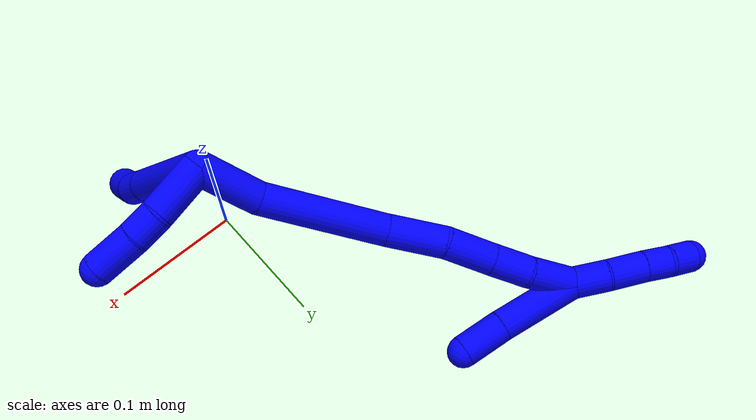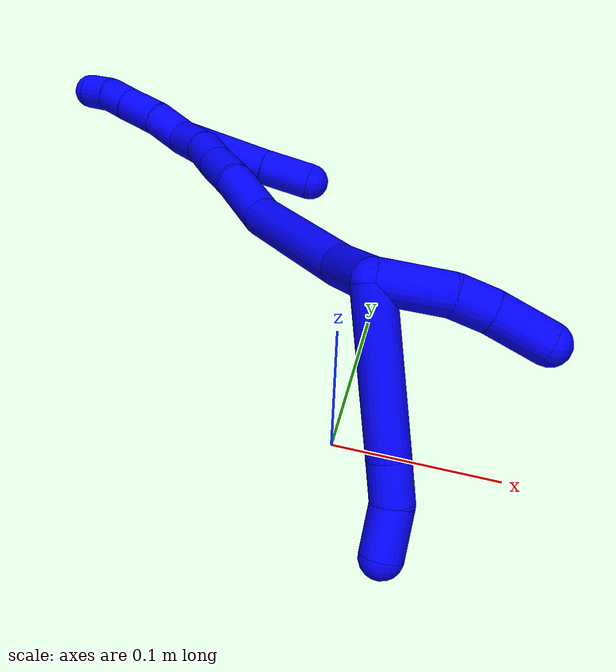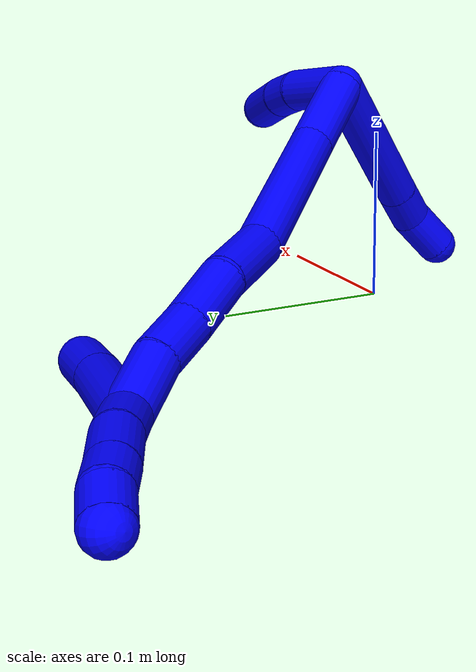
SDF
<sdf version="1.7">
 <world name="default">
  <model name="1">
   <static>0</static>
   <link name="1">
    <collision name="collision-cylinder-e_1_2_8">
     <pose>-0.02412 -0.039411 -0.01281 1.88506 -0.527106 -0.711275</pose>
     <geometry><cylinder><radius>0.0125</radius><length>0.095898</length></cylinder></geometry>
     <surface>
      <friction><ode><mu>1.16</mu><mu2>1.16</mu2><slip1>0</slip1><slip2>0</slip2></ode></friction>
      <contact><ode><kp>1e+06</kp><kd>1</kd><max_vel>0</max_vel><min_depth>0.001</min_depth></ode></contact>
     </surface>
    </collision>
    <visual name="visual-cylinder-e_1_2_8">
     <pose>-0.02412 -0.039411 -0.01281 1.88506 -0.527106 -0.711275</pose>
     <geometry><cylinder><radius>0.0125</radius><length>0.095898</length></cylinder></geometry>
     <material><ambient>0 0 1 1</ambient></material>
    </visual>
    <collision name="collision-cylinder-e_2_8_9">
     <pose>-0.054355 -0.089045 -0.028797 1.87207 -0.518979 -0.691976</pose>
     <geometry><cylinder><radius>0.0125</radius><length>0.024657</length></cylinder></geometry>
     <surface>
      <friction><ode><mu>1.16</mu><mu2>1.16</mu2><slip1>0</slip1><slip2>0</slip2></ode></friction>
      <contact><ode><kp>1e+06</kp><kd>1</kd><max_vel>0</max_vel><min_depth>0.001</min_depth></ode></contact>
     </surface>
    </collision>
    <visual name="visual-cylinder-e_2_8_9">
     <pose>-0.054355 -0.089045 -0.028797 1.87207 -0.518979 -0.691976</pose>
     <geometry><cylinder><radius>0.0125</radius><length>0.024657</length></cylinder></geometry>
     <material><ambient>0 0 1 1</ambient></material>
    </visual>
    <collision name="collision-cylinder-e_3_9_6">
     <pose>-0.067671 -0.112101 -0.031497 1.5337 -0.511083 -0.493223</pose>
     <geometry><cylinder><radius>0.0125</radius><length>0.029445</length></cylinder></geometry>
     <surface>
      <friction><ode><mu>1.16</mu><mu2>1.16</mu2><slip1>0</slip1><slip2>0</slip2></ode></friction>
      <contact><ode><kp>1e+06</kp><kd>1</kd><max_vel>0</max_vel><min_depth>0.001</min_depth></ode></contact>
     </surface>
    </collision>
    <visual name="visual-cylinder-e_3_9_6">
     <pose>-0.067671 -0.112101 -0.031497 1.5337 -0.511083 -0.493223</pose>
     <geometry><cylinder><radius>0.0125</radius><length>0.029445</length></cylinder></geometry>
     <material><ambient>0 0 1 1</ambient></material>
    </visual>
    <collision name="collision-cylinder-e_1_2_10">
     <pose>0.000732 -0.001019 -0.021494 3.0942 0.033988 1.24417</pose>
     <geometry><cylinder><radius>0.0125</radius><length>0.043062</length></cylinder></geometry>
     <surface>
      <friction><ode><mu>1.16</mu><mu2>1.16</mu2><slip1>0</slip1><slip2>0</slip2></ode></friction>
      <contact><ode><kp>1e+06</kp><kd>1</kd><max_vel>0</max_vel><min_depth>0.001</min_depth></ode></contact>
     </surface>
    </collision>
    <visual name="visual-cylinder-e_1_2_10">
     <pose>0.000732 -0.001019 -0.021494 3.0942 0.033988 1.24417</pose>
     <geometry><cylinder><radius>0.0125</radius><length>0.043062</length></cylinder></geometry>
     <material><ambient>0 0 1 1</ambient></material>
    </visual>
    <collision name="collision-cylinder-e_2_10_11">
     <pose>0.000727 -0.004545 -0.05379 2.91362 -0.066273 -0.563682</pose>
     <geometry><cylinder><radius>0.0125</radius><length>0.022225</length></cylinder></geometry>
     <surface>
      <friction><ode><mu>1.16</mu><mu2>1.16</mu2><slip1>0</slip1><slip2>0</slip2></ode></friction>
      <contact><ode><kp>1e+06</kp><kd>1</kd><max_vel>0</max_vel><min_depth>0.001</min_depth></ode></contact>
     </surface>
    </collision>
    <visual name="visual-cylinder-e_2_10_11">
     <pose>0.000727 -0.004545 -0.05379 2.91362 -0.066273 -0.563682</pose>
     <geometry><cylinder><radius>0.0125</radius><length>0.022225</length></cylinder></geometry>
     <material><ambient>0 0 1 1</ambient></material>
    </visual>
    <collision name="collision-cylinder-e_3_11_5">
     <pose>-0.001387 -0.01301 -0.080834 2.79 -0.079487 -0.440457</pose>
     <geometry><cylinder><radius>0.0125</radius><length>0.034713</length></cylinder></geometry>
     <surface>
      <friction><ode><mu>1.16</mu><mu2>1.16</mu2><slip1>0</slip1><slip2>0</slip2></ode></friction>
      <contact><ode><kp>1e+06</kp><kd>1</kd><max_vel>0</max_vel><min_depth>0.001</min_depth></ode></contact>
     </surface>
    </collision>
    <visual name="visual-cylinder-e_3_11_5">
     <pose>-0.001387 -0.01301 -0.080834 2.79 -0.079487 -0.440457</pose>
     <geometry><cylinder><radius>0.0125</radius><length>0.034713</length></cylinder></geometry>
     <material><ambient>0 0 1 1</ambient></material>
    </visual>
    <collision name="collision-cylinder-e_1_2_12">
     <pose>-0.0204 0.01297 0.004954 -1.20592 -0.973223 0.698609</pose>
     <geometry><cylinder><radius>0.0125</radius><length>0.049353</length></cylinder></geometry>
     <surface>
      <friction><ode><mu>1.16</mu><mu2>1.16</mu2><slip1>0</slip1><slip2>0</slip2></ode></friction>
      <contact><ode><kp>1e+06</kp><kd>1</kd><max_vel>0</max_vel><min_depth>0.001</min_depth></ode></contact>
     </surface>
    </collision>
    <visual name="visual-cylinder-e_1_2_12">
     <pose>-0.0204 0.01297 0.004954 -1.20592 -0.973223 0.698609</pose>
     <geometry><cylinder><radius>0.0125</radius><length>0.049353</length></cylinder></geometry>
     <material><ambient>0 0 1 1</ambient></material>
    </visual>
    <collision name="collision-cylinder-e_2_12_13">
     <pose>-0.074713 0.055972 0.02976 -0.986725 -0.755555 0.420465</pose>
     <geometry><cylinder><radius>0.0125</radius><length>0.098917</length></cylinder></geometry>
     <surface>
      <friction><ode><mu>1.16</mu><mu2>1.16</mu2><slip1>0</slip1><slip2>0</slip2></ode></friction>
      <contact><ode><kp>1e+06</kp><kd>1</kd><max_vel>0</max_vel><min_depth>0.001</min_depth></ode></contact>
     </surface>
    </collision>
    <visual name="visual-cylinder-e_2_12_13">
     <pose>-0.074713 0.055972 0.02976 -0.986725 -0.755555 0.420465</pose>
     <geometry><cylinder><radius>0.0125</radius><length>0.098917</length></cylinder></geometry>
     <material><ambient>0 0 1 1</ambient></material>
    </visual>
    <collision name="collision-cylinder-e_3_13_14">
     <pose>-0.119788 0.103353 0.058915 -1.07854 -0.515792 0.313117</pose>
     <geometry><cylinder><radius>0.0125</radius><length>0.04526</length></cylinder></geometry>
     <surface>
      <friction><ode><mu>1.16</mu><mu2>1.16</mu2><slip1>0</slip1><slip2>0</slip2></ode></friction>
      <contact><ode><kp>1e+06</kp><kd>1</kd><max_vel>0</max_vel><min_depth>0.001</min_depth></ode></contact>
     </surface>
    </collision>
    <visual name="visual-cylinder-e_3_13_14">
     <pose>-0.119788 0.103353 0.058915 -1.07854 -0.515792 0.313117</pose>
     <geometry><cylinder><radius>0.0125</radius><length>0.04526</length></cylinder></geometry>
     <material><ambient>0 0 1 1</ambient></material>
    </visual>
    <collision name="collision-cylinder-e_4_14_15">
     <pose>-0.143708 0.133702 0.073991 -1.15298 -0.731095 0.487792</pose>
     <geometry><cylinder><radius>0.0125</radius><length>0.038216</length></cylinder></geometry>
     <surface>
      <friction><ode><mu>1.16</mu><mu2>1.16</mu2><slip1>0</slip1><slip2>0</slip2></ode></friction>
      <contact><ode><kp>1e+06</kp><kd>1</kd><max_vel>0</max_vel><min_depth>0.001</min_depth></ode></contact>
     </surface>
    </collision>
    <visual name="visual-cylinder-e_4_14_15">
     <pose>-0.143708 0.133702 0.073991 -1.15298 -0.731095 0.487792</pose>
     <geometry><cylinder><radius>0.0125</radius><length>0.038216</length></cylinder></geometry>
     <material><ambient>0 0 1 1</ambient></material>
    </visual>
    <collision name="collision-cylinder-e_5_15_16">
     <pose>-0.165866 0.157816 0.084558 -1.16345 -0.660376 0.443378</pose>
     <geometry><cylinder><radius>0.0125</radius><length>0.030649</length></cylinder></geometry>
     <surface>
      <friction><ode><mu>1.16</mu><mu2>1.16</mu2><slip1>0</slip1><slip2>0</slip2></ode></friction>
      <contact><ode><kp>1e+06</kp><kd>1</kd><max_vel>0</max_vel><min_depth>0.001</min_depth></ode></contact>
     </surface>
    </collision>
    <visual name="visual-cylinder-e_5_15_16">
     <pose>-0.165866 0.157816 0.084558 -1.16345 -0.660376 0.443378</pose>
     <geometry><cylinder><radius>0.0125</radius><length>0.030649</length></cylinder></geometry>
     <material><ambient>0 0 1 1</ambient></material>
    </visual>
    <collision name="collision-cylinder-e_6_16_1">
     <pose>-0.18854 0.180002 0.096752 -0.981754 -0.783722 0.434777</pose>
     <geometry><cylinder><radius>0.0125</radius><length>0.037606</length></cylinder></geometry>
     <surface>
      <friction><ode><mu>1.16</mu><mu2>1.16</mu2><slip1>0</slip1><slip2>0</slip2></ode></friction>
      <contact><ode><kp>1e+06</kp><kd>1</kd><max_vel>0</max_vel><min_depth>0.001</min_depth></ode></contact>
     </surface>
    </collision>
    <visual name="visual-cylinder-e_6_16_1">
     <pose>-0.18854 0.180002 0.096752 -0.981754 -0.783722 0.434777</pose>
     <geometry><cylinder><radius>0.0125</radius><length>0.037606</length></cylinder></geometry>
     <material><ambient>0 0 1 1</ambient></material>
    </visual>
    <collision name="collision-cylinder-e_1_1_17">
     <pose>-0.205878 0.199904 0.11472 -0.695902 -0.286973 0.104712</pose>
     <geometry><cylinder><radius>0.0125</radius><length>0.028719</length></cylinder></geometry>
     <surface>
      <friction><ode><mu>1.16</mu><mu2>1.16</mu2><slip1>0</slip1><slip2>0</slip2></ode></friction>
      <contact><ode><kp>1e+06</kp><kd>1</kd><max_vel>0</max_vel><min_depth>0.001</min_depth></ode></contact>
     </surface>
    </collision>
    <visual name="visual-cylinder-e_1_1_17">
     <pose>-0.205878 0.199904 0.11472 -0.695902 -0.286973 0.104712</pose>
     <geometry><cylinder><radius>0.0125</radius><length>0.028719</length></cylinder></geometry>
     <material><ambient>0 0 1 1</ambient></material>
    </visual>
    <collision name="collision-cylinder-e_2_17_18">
     <pose>-0.215724 0.216364 0.136603 -0.593409 -0.40077 0.124035</pose>
     <geometry><cylinder><radius>0.0125</radius><length>0.02964</length></cylinder></geometry>
     <surface>
      <friction><ode><mu>1.16</mu><mu2>1.16</mu2><slip1>0</slip1><slip2>0</slip2></ode></friction>
      <contact><ode><kp>1e+06</kp><kd>1</kd><max_vel>0</max_vel><min_depth>0.001</min_depth></ode></contact>
     </surface>
    </collision>
    <visual name="visual-cylinder-e_2_17_18">
     <pose>-0.215724 0.216364 0.136603 -0.593409 -0.40077 0.124035</pose>
     <geometry><cylinder><radius>0.0125</radius><length>0.02964</length></cylinder></geometry>
     <material><ambient>0 0 1 1</ambient></material>
    </visual>
    <collision name="collision-cylinder-e_3_18_19">
     <pose>-0.225688 0.229733 0.155575 -0.64305 -0.411987 0.138976</pose>
     <geometry><cylinder><radius>0.0125</radius><length>0.020888</length></cylinder></geometry>
     <surface>
      <friction><ode><mu>1.16</mu><mu2>1.16</mu2><slip1>0</slip1><slip2>0</slip2></ode></friction>
      <contact><ode><kp>1e+06</kp><kd>1</kd><max_vel>0</max_vel><min_depth>0.001</min_depth></ode></contact>
     </surface>
    </collision>
    <visual name="visual-cylinder-e_3_18_19">
     <pose>-0.225688 0.229733 0.155575 -0.64305 -0.411987 0.138976</pose>
     <geometry><cylinder><radius>0.0125</radius><length>0.020888</length></cylinder></geometry>
     <material><ambient>0 0 1 1</ambient></material>
    </visual>
    <collision name="collision-cylinder-e_4_19_4">
     <pose>-0.235719 0.239314 0.170894 -0.46485 -0.598903 0.145898</pose>
     <geometry><cylinder><radius>0.0125</radius><length>0.020753</length></cylinder></geometry>
     <surface>
      <friction><ode><mu>1.16</mu><mu2>1.16</mu2><slip1>0</slip1><slip2>0</slip2></ode></friction>
      <contact><ode><kp>1e+06</kp><kd>1</kd><max_vel>0</max_vel><min_depth>0.001</min_depth></ode></contact>
     </surface>
    </collision>
    <visual name="visual-cylinder-e_4_19_4">
     <pose>-0.235719 0.239314 0.170894 -0.46485 -0.598903 0.145898</pose>
     <geometry><cylinder><radius>0.0125</radius><length>0.020753</length></cylinder></geometry>
     <material><ambient>0 0 1 1</ambient></material>
    </visual>
    <collision name="collision-cylinder-e_1_1_20">
     <pose>-0.194437 0.180321 0.074359 2.79516 0.228806 1.16217</pose>
     <geometry><cylinder><radius>0.0125</radius><length>0.065041</length></cylinder></geometry>
     <surface>
      <friction><ode><mu>1.16</mu><mu2>1.16</mu2><slip1>0</slip1><slip2>0</slip2></ode></friction>
      <contact><ode><kp>1e+06</kp><kd>1</kd><max_vel>0</max_vel><min_depth>0.001</min_depth></ode></contact>
     </surface>
    </collision>
    <visual name="visual-cylinder-e_1_1_20">
     <pose>-0.194437 0.180321 0.074359 2.79516 0.228806 1.16217</pose>
     <geometry><cylinder><radius>0.0125</radius><length>0.065041</length></cylinder></geometry>
     <material><ambient>0 0 1 1</ambient></material>
    </visual>
    <collision name="collision-cylinder-e_2_20_3">
     <pose>-0.183392 0.164582 0.028221 2.84563 0.211486 1.23748</pose>
     <geometry><cylinder><radius>0.0125</radius><length>0.034959</length></cylinder></geometry>
     <surface>
      <friction><ode><mu>1.16</mu><mu2>1.16</mu2><slip1>0</slip1><slip2>0</slip2></ode></friction>
      <contact><ode><kp>1e+06</kp><kd>1</kd><max_vel>0</max_vel><min_depth>0.001</min_depth></ode></contact>
     </surface>
    </collision>
    <visual name="visual-cylinder-e_2_20_3">
     <pose>-0.183392 0.164582 0.028221 2.84563 0.211486 1.23748</pose>
     <geometry><cylinder><radius>0.0125</radius><length>0.034959</length></cylinder></geometry>
     <material><ambient>0 0 1 1</ambient></material>
    </visual>
    <collision name="collision-sphere-3">
     <pose>-0.179723 0.159598 0.011874 0 -0 0</pose>
     <geometry><sphere><radius>0.0125</radius></sphere></geometry>
     <surface>
      <friction><ode><mu>1.16</mu><mu2>1.16</mu2><slip1>0</slip1><slip2>0</slip2></ode></friction>
      <contact><ode><kp>1e+06</kp><kd>1</kd><max_vel>0</max_vel><min_depth>0.001</min_depth></ode></contact>
     </surface>
    </collision>
    <visual name="visual-sphere-3">
     <pose>-0.179723 0.159598 0.011874 0 -0 0</pose>
     <geometry><sphere><radius>0.0125</radius></sphere></geometry>
     <material><ambient>0 0 1 1</ambient></material>
    </visual>
    <collision name="collision-sphere-20">
     <pose>-0.187061 0.169567 0.044568 0 -0 0</pose>
     <geometry><sphere><radius>0.0125</radius></sphere></geometry>
     <surface>
      <friction><ode><mu>1.16</mu><mu2>1.16</mu2><slip1>0</slip1><slip2>0</slip2></ode></friction>
      <contact><ode><kp>1e+06</kp><kd>1</kd><max_vel>0</max_vel><min_depth>0.001</min_depth></ode></contact>
     </surface>
    </collision>
    <visual name="visual-sphere-20">
     <pose>-0.187061 0.169567 0.044568 0 -0 0</pose>
     <geometry><sphere><radius>0.0125</radius></sphere></geometry>
     <material><ambient>0 0 1 1</ambient></material>
    </visual>
    <collision name="collision-sphere-4">
     <pose>-0.241569 0.243156 0.178555 0 -0 0</pose>
     <geometry><sphere><radius>0.0125</radius></sphere></geometry>
     <surface>
      <friction><ode><mu>1.16</mu><mu2>1.16</mu2><slip1>0</slip1><slip2>0</slip2></ode></friction>
      <contact><ode><kp>1e+06</kp><kd>1</kd><max_vel>0</max_vel><min_depth>0.001</min_depth></ode></contact>
     </surface>
    </collision>
    <visual name="visual-sphere-4">
     <pose>-0.241569 0.243156 0.178555 0 -0 0</pose>
     <geometry><sphere><radius>0.0125</radius></sphere></geometry>
     <material><ambient>0 0 1 1</ambient></material>
    </visual>
    <collision name="collision-sphere-11">
     <pose>-9e-06 -0.007051 -0.064591 0 -0 0</pose>
     <geometry><sphere><radius>0.0125</radius></sphere></geometry>
     <surface>
      <friction><ode><mu>1.16</mu><mu2>1.16</mu2><slip1>0</slip1><slip2>0</slip2></ode></friction>
      <contact><ode><kp>1e+06</kp><kd>1</kd><max_vel>0</max_vel><min_depth>0.001</min_depth></ode></contact>
     </surface>
    </collision>
    <visual name="visual-sphere-11">
     <pose>-9e-06 -0.007051 -0.064591 0 -0 0</pose>
     <geometry><sphere><radius>0.0125</radius></sphere></geometry>
     <material><ambient>0 0 1 1</ambient></material>
    </visual>
    <collision name="collision-sphere-10">
     <pose>0.001463 -0.002039 -0.042989 0 -0 0</pose>
     <geometry><sphere><radius>0.0125</radius></sphere></geometry>
     <surface>
      <friction><ode><mu>1.16</mu><mu2>1.16</mu2><slip1>0</slip1><slip2>0</slip2></ode></friction>
      <contact><ode><kp>1e+06</kp><kd>1</kd><max_vel>0</max_vel><min_depth>0.001</min_depth></ode></contact>
     </surface>
    </collision>
    <visual name="visual-sphere-10">
     <pose>0.001463 -0.002039 -0.042989 0 -0 0</pose>
     <geometry><sphere><radius>0.0125</radius></sphere></geometry>
     <material><ambient>0 0 1 1</ambient></material>
    </visual>
    <collision name="collision-sphere-6">
     <pose>-0.074872 -0.124933 -0.031021 0 -0 0</pose>
     <geometry><sphere><radius>0.0125</radius></sphere></geometry>
     <surface>
      <friction><ode><mu>1.16</mu><mu2>1.16</mu2><slip1>0</slip1><slip2>0</slip2></ode></friction>
      <contact><ode><kp>1e+06</kp><kd>1</kd><max_vel>0</max_vel><min_depth>0.001</min_depth></ode></contact>
     </surface>
    </collision>
    <visual name="visual-sphere-6">
     <pose>-0.074872 -0.124933 -0.031021 0 -0 0</pose>
     <geometry><sphere><radius>0.0125</radius></sphere></geometry>
     <material><ambient>0 0 1 1</ambient></material>
    </visual>
    <collision name="collision-sphere-9">
     <pose>-0.06047 -0.099268 -0.031973 0 -0 0</pose>
     <geometry><sphere><radius>0.0125</radius></sphere></geometry>
     <surface>
      <friction><ode><mu>1.16</mu><mu2>1.16</mu2><slip1>0</slip1><slip2>0</slip2></ode></friction>
      <contact><ode><kp>1e+06</kp><kd>1</kd><max_vel>0</max_vel><min_depth>0.001</min_depth></ode></contact>
     </surface>
    </collision>
    <visual name="visual-sphere-9">
     <pose>-0.06047 -0.099268 -0.031973 0 -0 0</pose>
     <geometry><sphere><radius>0.0125</radius></sphere></geometry>
     <material><ambient>0 0 1 1</ambient></material>
    </visual>
    <collision name="collision-sphere-2">
     <geometry><sphere><radius>0.0125</radius></sphere></geometry>
     <surface>
      <friction><ode><mu>1.16</mu><mu2>1.16</mu2><slip1>0</slip1><slip2>0</slip2></ode></friction>
      <contact><ode><kp>1e+06</kp><kd>1</kd><max_vel>0</max_vel><min_depth>0.001</min_depth></ode></contact>
     </surface>
    </collision>
    <visual name="visual-sphere-2">
     <geometry><sphere><radius>0.0125</radius></sphere></geometry>
     <material><ambient>0 0 1 1</ambient></material>
    </visual>
    <collision name="collision-sphere-19">
     <pose>-0.22987 0.235472 0.163234 0 -0 0</pose>
     <geometry><sphere><radius>0.0125</radius></sphere></geometry>
     <surface>
      <friction><ode><mu>1.16</mu><mu2>1.16</mu2><slip1>0</slip1><slip2>0</slip2></ode></friction>
      <contact><ode><kp>1e+06</kp><kd>1</kd><max_vel>0</max_vel><min_depth>0.001</min_depth></ode></contact>
     </surface>
    </collision>
    <visual name="visual-sphere-19">
     <pose>-0.22987 0.235472 0.163234 0 -0 0</pose>
     <geometry><sphere><radius>0.0125</radius></sphere></geometry>
     <material><ambient>0 0 1 1</ambient></material>
    </visual>
    <collision name="collision-sphere-8">
     <pose>-0.04824 -0.078822 -0.02562 0 -0 0</pose>
     <geometry><sphere><radius>0.0125</radius></sphere></geometry>
     <surface>
      <friction><ode><mu>1.16</mu><mu2>1.16</mu2><slip1>0</slip1><slip2>0</slip2></ode></friction>
      <contact><ode><kp>1e+06</kp><kd>1</kd><max_vel>0</max_vel><min_depth>0.001</min_depth></ode></contact>
     </surface>
    </collision>
    <visual name="visual-sphere-8">
     <pose>-0.04824 -0.078822 -0.02562 0 -0 0</pose>
     <geometry><sphere><radius>0.0125</radius></sphere></geometry>
     <material><ambient>0 0 1 1</ambient></material>
    </visual>
    <collision name="collision-sphere-5">
     <pose>-0.002765 -0.018968 -0.097078 0 -0 0</pose>
     <geometry><sphere><radius>0.0125</radius></sphere></geometry>
     <surface>
      <friction><ode><mu>1.16</mu><mu2>1.16</mu2><slip1>0</slip1><slip2>0</slip2></ode></friction>
      <contact><ode><kp>1e+06</kp><kd>1</kd><max_vel>0</max_vel><min_depth>0.001</min_depth></ode></contact>
     </surface>
    </collision>
    <visual name="visual-sphere-5">
     <pose>-0.002765 -0.018968 -0.097078 0 -0 0</pose>
     <geometry><sphere><radius>0.0125</radius></sphere></geometry>
     <material><ambient>0 0 1 1</ambient></material>
    </visual>
    <collision name="collision-sphere-12">
     <pose>-0.0408 0.02594 0.009909 0 -0 0</pose>
     <geometry><sphere><radius>0.0125</radius></sphere></geometry>
     <surface>
      <friction><ode><mu>1.16</mu><mu2>1.16</mu2><slip1>0</slip1><slip2>0</slip2></ode></friction>
      <contact><ode><kp>1e+06</kp><kd>1</kd><max_vel>0</max_vel><min_depth>0.001</min_depth></ode></contact>
     </surface>
    </collision>
    <visual name="visual-sphere-12">
     <pose>-0.0408 0.02594 0.009909 0 -0 0</pose>
     <geometry><sphere><radius>0.0125</radius></sphere></geometry>
     <material><ambient>0 0 1 1</ambient></material>
    </visual>
    <collision name="collision-sphere-13">
     <pose>-0.108626 0.086004 0.049611 0 -0 0</pose>
     <geometry><sphere><radius>0.0125</radius></sphere></geometry>
     <surface>
      <friction><ode><mu>1.16</mu><mu2>1.16</mu2><slip1>0</slip1><slip2>0</slip2></ode></friction>
      <contact><ode><kp>1e+06</kp><kd>1</kd><max_vel>0</max_vel><min_depth>0.001</min_depth></ode></contact>
     </surface>
    </collision>
    <visual name="visual-sphere-13">
     <pose>-0.108626 0.086004 0.049611 0 -0 0</pose>
     <geometry><sphere><radius>0.0125</radius></sphere></geometry>
     <material><ambient>0 0 1 1</ambient></material>
    </visual>
    <collision name="collision-sphere-14">
     <pose>-0.13095 0.120701 0.068219 0 -0 0</pose>
     <geometry><sphere><radius>0.0125</radius></sphere></geometry>
     <surface>
      <friction><ode><mu>1.16</mu><mu2>1.16</mu2><slip1>0</slip1><slip2>0</slip2></ode></friction>
      <contact><ode><kp>1e+06</kp><kd>1</kd><max_vel>0</max_vel><min_depth>0.001</min_depth></ode></contact>
     </surface>
    </collision>
    <visual name="visual-sphere-14">
     <pose>-0.13095 0.120701 0.068219 0 -0 0</pose>
     <geometry><sphere><radius>0.0125</radius></sphere></geometry>
     <material><ambient>0 0 1 1</ambient></material>
    </visual>
    <collision name="collision-sphere-15">
     <pose>-0.156466 0.146704 0.079763 0 -0 0</pose>
     <geometry><sphere><radius>0.0125</radius></sphere></geometry>
     <surface>
      <friction><ode><mu>1.16</mu><mu2>1.16</mu2><slip1>0</slip1><slip2>0</slip2></ode></friction>
      <contact><ode><kp>1e+06</kp><kd>1</kd><max_vel>0</max_vel><min_depth>0.001</min_depth></ode></contact>
     </surface>
    </collision>
    <visual name="visual-sphere-15">
     <pose>-0.156466 0.146704 0.079763 0 -0 0</pose>
     <geometry><sphere><radius>0.0125</radius></sphere></geometry>
     <material><ambient>0 0 1 1</ambient></material>
    </visual>
    <collision name="collision-sphere-16">
     <pose>-0.175267 0.168928 0.089353 0 -0 0</pose>
     <geometry><sphere><radius>0.0125</radius></sphere></geometry>
     <surface>
      <friction><ode><mu>1.16</mu><mu2>1.16</mu2><slip1>0</slip1><slip2>0</slip2></ode></friction>
      <contact><ode><kp>1e+06</kp><kd>1</kd><max_vel>0</max_vel><min_depth>0.001</min_depth></ode></contact>
     </surface>
    </collision>
    <visual name="visual-sphere-16">
     <pose>-0.175267 0.168928 0.089353 0 -0 0</pose>
     <geometry><sphere><radius>0.0125</radius></sphere></geometry>
     <material><ambient>0 0 1 1</ambient></material>
    </visual>
    <collision name="collision-sphere-1">
     <pose>-0.201813 0.191075 0.104151 0 -0 0</pose>
     <geometry><sphere><radius>0.0125</radius></sphere></geometry>
     <surface>
      <friction><ode><mu>1.16</mu><mu2>1.16</mu2><slip1>0</slip1><slip2>0</slip2></ode></friction>
      <contact><ode><kp>1e+06</kp><kd>1</kd><max_vel>0</max_vel><min_depth>0.001</min_depth></ode></contact>
     </surface>
    </collision>
    <visual name="visual-sphere-1">
     <pose>-0.201813 0.191075 0.104151 0 -0 0</pose>
     <geometry><sphere><radius>0.0125</radius></sphere></geometry>
     <material><ambient>0 0 1 1</ambient></material>
    </visual>
    <collision name="collision-sphere-18">
     <pose>-0.221506 0.223995 0.147916 0 -0 0</pose>
     <geometry><sphere><radius>0.0125</radius></sphere></geometry>
     <surface>
      <friction><ode><mu>1.16</mu><mu2>1.16</mu2><slip1>0</slip1><slip2>0</slip2></ode></friction>
      <contact><ode><kp>1e+06</kp><kd>1</kd><max_vel>0</max_vel><min_depth>0.001</min_depth></ode></contact>
     </surface>
    </collision>
    <visual name="visual-sphere-18">
     <pose>-0.221506 0.223995 0.147916 0 -0 0</pose>
     <geometry><sphere><radius>0.0125</radius></sphere></geometry>
     <material><ambient>0 0 1 1</ambient></material>
    </visual>
    <collision name="collision-sphere-17">
     <pose>-0.209942 0.208734 0.12529 0 -0 0</pose>
     <geometry><sphere><radius>0.0125</radius></sphere></geometry>
     <surface>
      <friction><ode><mu>1.16</mu><mu2>1.16</mu2><slip1>0</slip1><slip2>0</slip2></ode></friction>
      <contact><ode><kp>1e+06</kp><kd>1</kd><max_vel>0</max_vel><min_depth>0.001</min_depth></ode></contact>
     </surface>
    </collision>
    <visual name="visual-sphere-17">
     <pose>-0.209942 0.208734 0.12529 0 -0 0</pose>
     <geometry><sphere><radius>0.0125</radius></sphere></geometry>
     <material><ambient>0 0 1 1</ambient></material>
    </visual>
    <inertial>
     <pose>-0.104135 0.076132 0.03611 0 -0 0</pose>
     <mass>0.75</mass>
     <inertia>
      <ixx>0.000164</ixx>
      <ixy>0</ixy>
      <ixz>0</ixz>
      <iyy>0.000115</iyy>
      <iyz>0</iyz>
      <izz>0.000119</izz>
     </inertia>
    </inertial>
   </link>
   <pose>0.014003 0.016155 0.126826 1.02325 -1.19714 -0.826336</pose>
  </model>
 </world>
</sdf>
